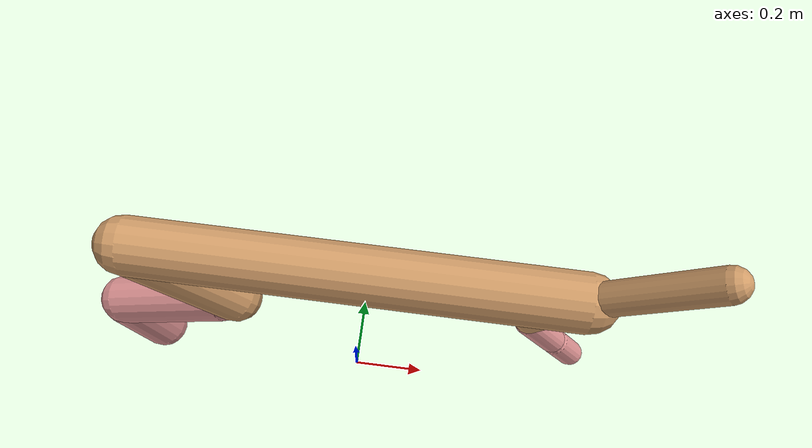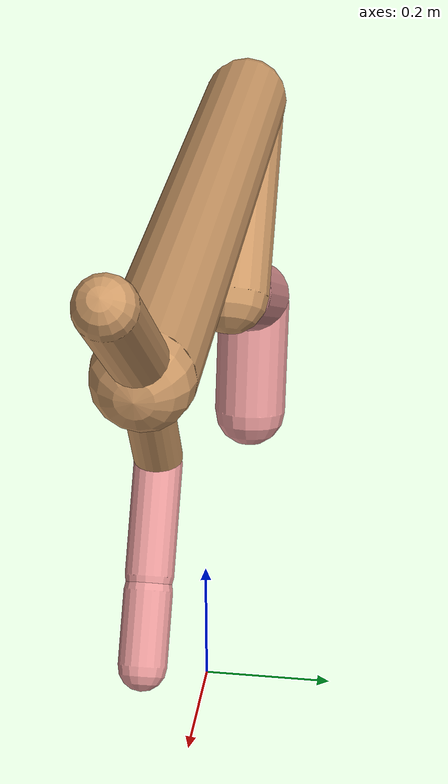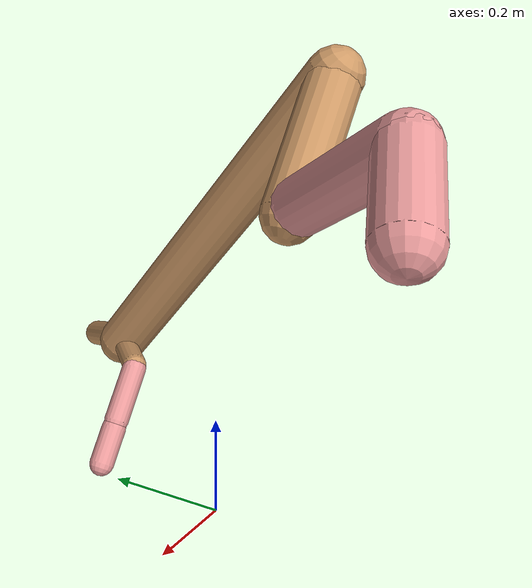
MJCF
<mujoco model="cheetah">
  <compiler angle="radian" coordinate="local" inertiafromgeom="true" settotalmass="14" />
  <default>
    <joint armature=".1" damping=".01" limited="true" solimplimit="0 .8 .03" solreflimit=".02 1" stiffness="8" />
    <geom conaffinity="0" condim="3" contype="1" friction="0.8 .1 .1" rgba="0.8 0.6 .4 1" solimp="0.0 0.8 0.01" solref="0.02 1" />
    <motor ctrllimited="true" ctrlrange="-1 1" />
  </default>
  <size nstack="300000" nuser_geom="1" />
  <option gravity="0 0 -9.81" timestep="0.01" />
  <worldbody>
    <body name="torso" pos="0.0 0.0 0.8073695178463295">
      <joint armature="0" axis="1 0 0" damping="0" limited="false" name="ignorex" pos="0 0 0" stiffness="0" type="slide" />
      <joint armature="0" axis="0 0 1" damping="0" limited="false" name="ignorez" pos="0 0 0" stiffness="0" type="slide" />
      <joint armature="0" axis="0 1 0" damping="0" limited="false" name="ignorey" pos="0 0 0" stiffness="0" type="hinge" />
      <geom fromto="-0.5 0.0 0.0 0.509386066017745 0.0 0.0" name="torso" size="0.06762265938092495" type="capsule" />
      <geom axisangle="0 1 0 .87" name="head" pos="0.6093860660177451 0.0 0.1" size="0.038699680176023835 0.15" type="capsule" />

      <body name="bthigh" pos="-.5 0 0">
        <joint axis="0 1 0" damping="6" name="bthigh" pos="0 0 0" range="-.52 1.05" stiffness="240" type="hinge" />
        <geom axisangle="0 1 0 -3.8" name="bthigh" pos="0.1080443481446032 0.0 -0.14045765258798418" size="0.0645074341215054 0.15819371193874385" type="capsule" />
        <body name="bshin" pos="0.1760886962892064 0.0 -0.27091530517596835">
          <joint axis="0 1 0" damping="4.5" name="bshin" pos="0 0 0" range="-.785 .785" stiffness="180" type="hinge" />
          <geom axisangle="0 1 0 -2.03" name="bshin" pos="-0.15220773935334422 0.0 -0.07610386967667211" rgba="0.9 0.6 0.6 1" size="0.0645074341215054 0.1636486675228385" type="capsule" />
          <body name="bfoot" pos="-0.30441547870668845 0.0 -0.15220773935334422">
            <joint axis="0 1 0" damping="3" name="bfoot" pos="0 0 0" range="-.4 .785" stiffness="120" type="hinge" />
            <geom axisangle="0 1 0 -.27" name="bfoot" pos="0.03252720128703653 0.0 -0.10517128416141813" rgba="0.9 0.6 0.6 1" size="0.0645074341215054 0.10255316498097879" type="capsule" />
            <inertial mass="10" />
          </body>
        </body>
      </body>
      <body name="fthigh" pos="0.5093860660177452 0.0 0.0">
        <joint axis="0 1 0" damping="4.5" name="fthigh" pos="0 0 0" range="-1.5 0.8" stiffness="180" type="hinge" />
        <geom axisangle="0 1 0 .52" name="fthigh" pos="-0.04989554608158897 0.0 -0.0855352218541525" size="0.0322 0.0931" type="capsule" />
        <body name="fshin" pos="-0.09979109216317794 0.0 -0.171070443708305">
          <joint axis="0 1 0" damping="3" name="fshin" pos="0 0 0" range="-1.2 1.1" stiffness="120" type="hinge" />
          <geom axisangle="0 1 0 -.6" name="fshin" pos="0.046381400387749405 0.0 -0.06422040053688378" rgba="0.9 0.6 0.6 1" size="0.0322 0.07419999999999999" type="capsule" />
          <body name="ffoot" pos="0.09276280077549881 0.0 -0.12844080107376757">
            <joint axis="0 1 0" damping="1.5" name="ffoot" pos="0 0 0" range="-3.1 -0.3" stiffness="60" type="hinge" />
            <geom axisangle="0 1 0 -.6" name="ffoot" pos="0.033644090582416526 0.0 -0.05233525201709238" rgba="0.9 0.6 0.6 1" size="0.0322 0.049" type="capsule" />
            <inertial mass="10" />
          </body>
        </body>
      </body>
    </body>
  </worldbody>
  <actuator>
    <motor gear="120" joint="bthigh" name="bthigh" />
    <motor gear="90" joint="bshin" name="bshin" />
    <motor gear="60" joint="bfoot" name="bfoot" />
    <motor gear="120" joint="fthigh" name="fthigh" />
    <motor gear="60" joint="fshin" name="fshin" />
    <motor gear="30" joint="ffoot" name="ffoot" />
  </actuator>
</mujoco>
